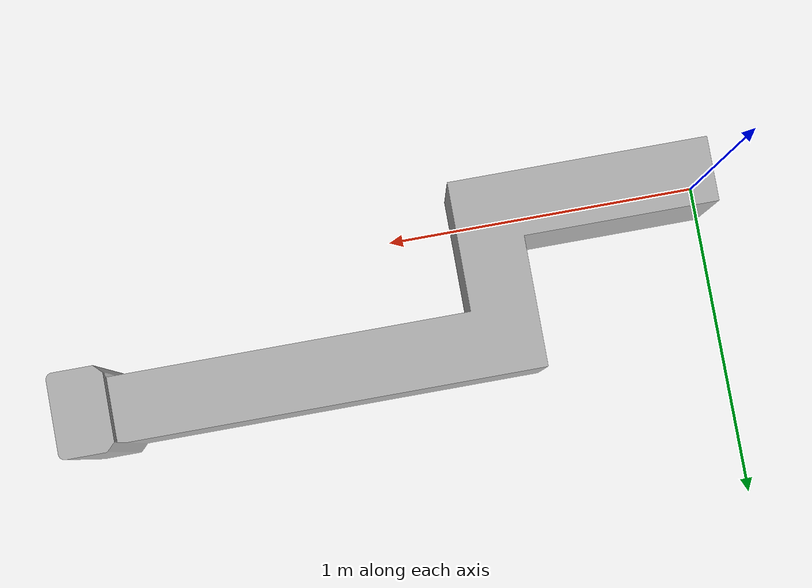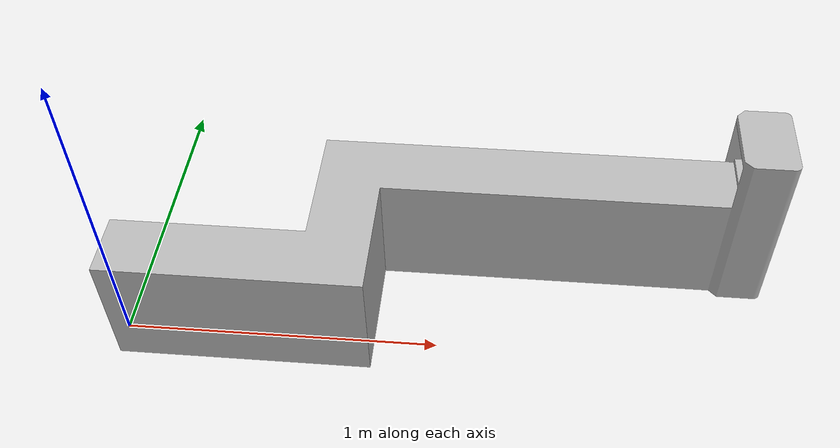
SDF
<?xml version="1.0" ?>
<sdf version="1.11">
  <model name="assembly_conveyor">
    <link name="base">

      <visual name="base_visual">
        <geometry>
          <mesh>
            <uri>model://assembly_conveyor/meshes/assembly_conveyor.gltf</uri>
          </mesh>
        </geometry>
      </visual>

      <collision name="base_collision">
        <density>2700</density>
        <geometry>
          <mesh>
            <uri>model://assembly_conveyor/meshes/base.stl</uri>
          </mesh>
        </geometry>
      </collision>

      <inertial auto="true"/>
    </link>

    <link name="section_1_belt">
      <collision name="section_1_belt">
        <pose>0.34075 0 0.4245 0 0 0</pose>
        <geometry>
          <box>
            <size>0.6815 0.2 0.001</size>
          </box>
        </geometry>
      </collision>

      <sensor name='contact_detector' type='contact'>
        <update_rate>30</update_rate>
          <contact>
            <collision>section_1_belt</collision>
          </contact>
      </sensor>
    </link>

    <link name="section_2_belt">
      <collision name="section_2_belt">
        <pose>0.7 0.1 0.4225 0 0 1.57</pose>
        <geometry>
          <box>
            <size>0.4 0.2 0.001</size>
          </box>
        </geometry>
      </collision>
    </link>

    <link name="section_3_belt">
      <collision name="section_3_belt">
        <pose>1.2525 0.4 0.4205 0 0 0</pose>
        <geometry>
          <box>
            <size>1.305 0.2 0.001</size>
          </box>
        </geometry>
      </collision>
    </link>

    <link name="module_submission_link">
      <collision name="module_submission">
        <pose>1.955 0.4 0.42 0 0 0</pose>
        <geometry>
          <box>
            <size>0.1 0.1 0.001</size>
          </box>
        </geometry>
      </collision>
    </link>

    <joint name="module_submission_joint" type="fixed">
      <parent>base</parent>
      <child>module_submission_link</child>
    </joint>

    <joint name="belt_1_joint" type="prismatic">
      <parent>base</parent>
      <child>section_1_belt</child>
      <axis>
        <xyz>1 0 0</xyz>
        <limit>
          <lower>-0.01</lower>
          <upper>0.01</upper>
          <effort>100</effort>
        </limit>
      </axis>
    </joint>

    <joint name="belt_2_joint" type="prismatic">
      <parent>base</parent>
      <child>section_2_belt</child>
      <axis>
        <xyz>0 1 0</xyz>
        <limit>
          <lower>-0.15</lower>
          <upper>0.15</upper>
          <effort>100</effort>
        </limit>
      </axis>
    </joint>

    <joint name="belt_3_joint" type="prismatic">
      <parent>base</parent>
      <child>section_3_belt</child>
      <axis>
        <xyz>1 0 0</xyz>
        <limit>
          <lower>-0.01</lower>
          <upper>0.01</upper>
          <effort>100</effort>
        </limit>
      </axis>
    </joint>

    <link name="bottom_shell_insertion_link">
      <pose> 0.15 0.0 0.43 0 0 0 </pose>
    </link>

    <joint name="bottom_shell_insertion_joint" type="fixed">
      <parent>base</parent>
      <child>bottom_shell_insertion_link</child>
    </joint>

    <plugin
      filename="libLinearConveyorPlugin.so"
      name="ariac_plugins::LinearConveyorPlugin">
      <ros>
        <namespace>assembly_conveyor/section_1</namespace>
      </ros>
      <joint_name>belt_1_joint</joint_name>
      <max_speed>0.1</max_speed>
    </plugin>

    <plugin
      filename="libLinearConveyorPlugin.so"
      name="ariac_plugins::LinearConveyorPlugin">
      <ros>
        <namespace>assembly_conveyor/section_2</namespace>
      </ros>
      <joint_name>belt_2_joint</joint_name>
      <max_speed>0.1</max_speed>
    </plugin>

    <plugin
      filename="libLinearConveyorPlugin.so"
      name="ariac_plugins::LinearConveyorPlugin">
      <ros>
        <namespace>assembly_conveyor/section_3</namespace>
      </ros>
      <bidirectional>true</bidirectional>
      <joint_name>belt_3_joint</joint_name>
      <max_speed>0.3</max_speed>
    </plugin>

    <plugin
      filename="libTFPublisherPlugin.so"
      name="ariac_plugins::TFPublisherPlugin">
      <base_link>base</base_link>
      <static>true</static>
      <child link="bottom_shell_insertion_link" frame="bottom_shell_insertion_frame"/>
    </plugin>

    <joint name="assembly_conveyor_to_world" type="fixed">
      <parent>world</parent>
      <child>base</child>
    </joint>

  </model>

</sdf>
